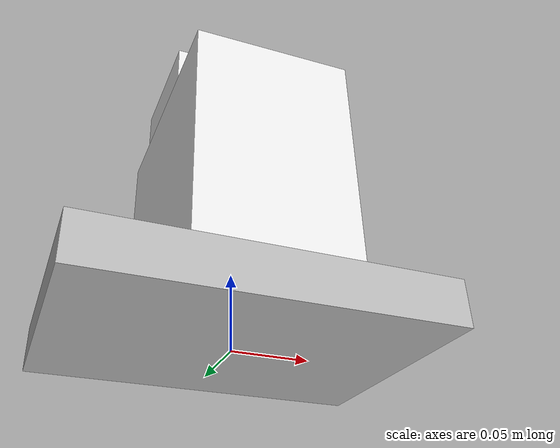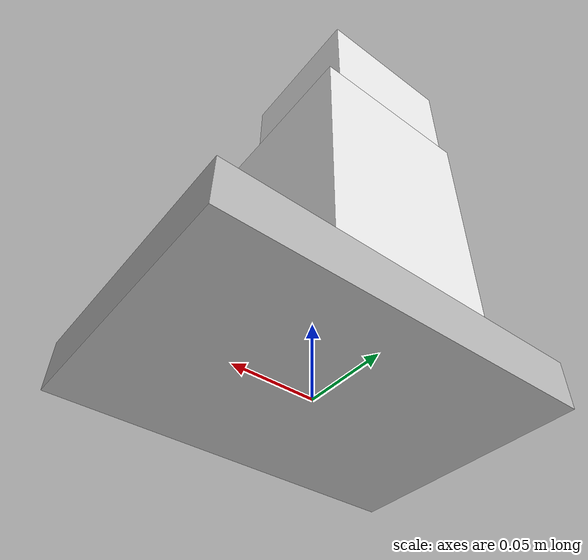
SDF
<?xml version='1.0'?>
<sdf version="1.4">
<model name="wfs">
    <static>true</static>
    <link name="link">
      <collision name="collision_base">
      	<pose>0 0 0.015 0 0 0</pose>
        <geometry>
          <box>
            <size>0.226 0.158 0.03</size>
          </box>
        </geometry>
      </collision>
      <visual name="visual_base">
      	<pose>0 0 0.015 0 0 0</pose>
        <geometry>
          <box>
            <size>0.226 0.158 0.03</size>
          </box>
        </geometry>
      </visual>
      <collision name="collision_body">
        <pose>0 0 0.1005 0 0 0</pose>
        <geometry>
          <box>
            <size>0.1 0.158 0.141</size>
          </box>
        </geometry>
      </collision>
      <visual name="visual_body">
        <pose>0 0 0.1005 0 0 0</pose>
        <geometry>
          <box>
            <size>0.1 0.158 0.141</size>
          </box>
        </geometry>
        <material>
          <script>
            <uri>file://media/materials/scripts/gazebo.material</uri>
            <name>Gazebo/White</name>
          </script>
        </material>
      </visual>
      <collision name="collision_top">
        <pose>0.0 0.037 0.199 0 0 0</pose>
        <geometry>
          <box>
            <size>0.085 0.084 0.056</size>
          </box>
        </geometry>
      </collision>
      <visual name="visual_top">
        <pose>0.0 0.037 0.199 0 0 0</pose>
        <geometry>
          <box>
            <size>0.085 0.084 0.056</size>
          </box>
        </geometry>
        <material>
          <script>
            <uri>file://media/materials/scripts/gazebo.material</uri>
            <name>Gazebo/White</name>
          </script>
        </material>
      </visual>
    </link>
  </model>
</sdf>
